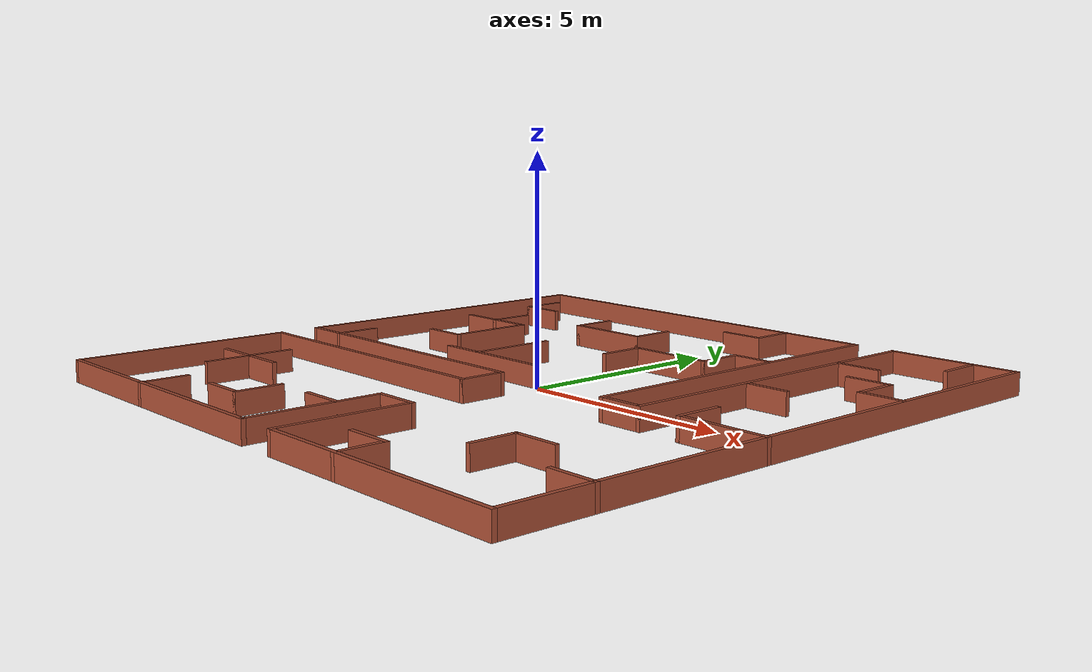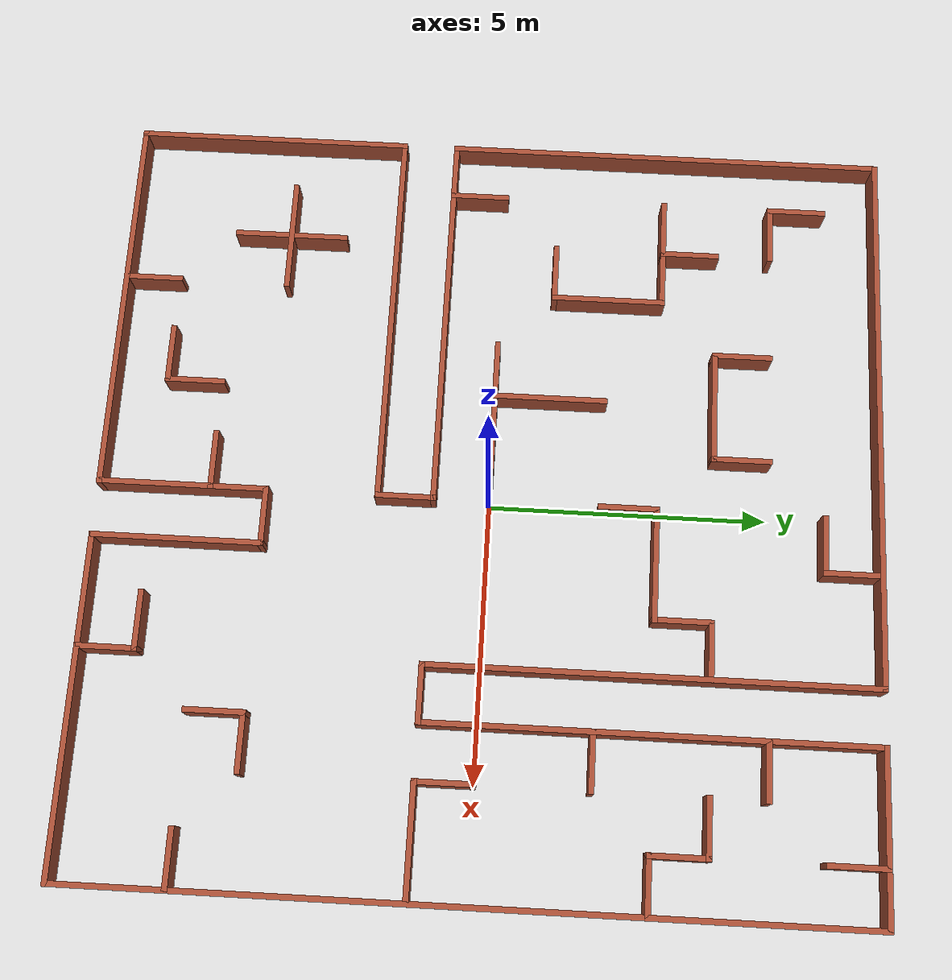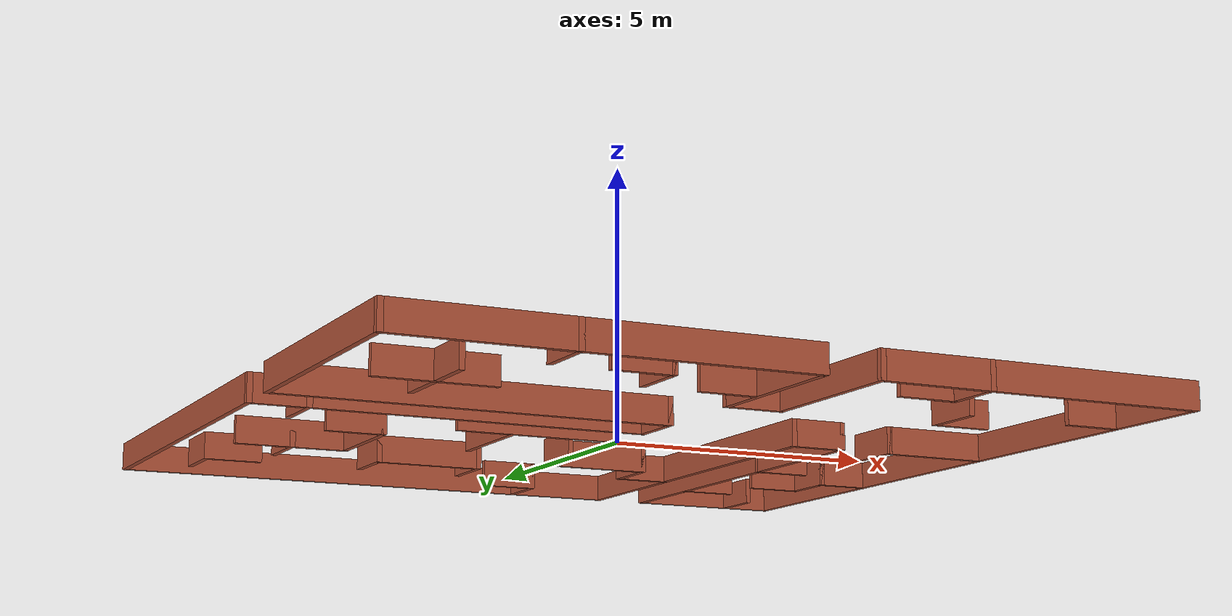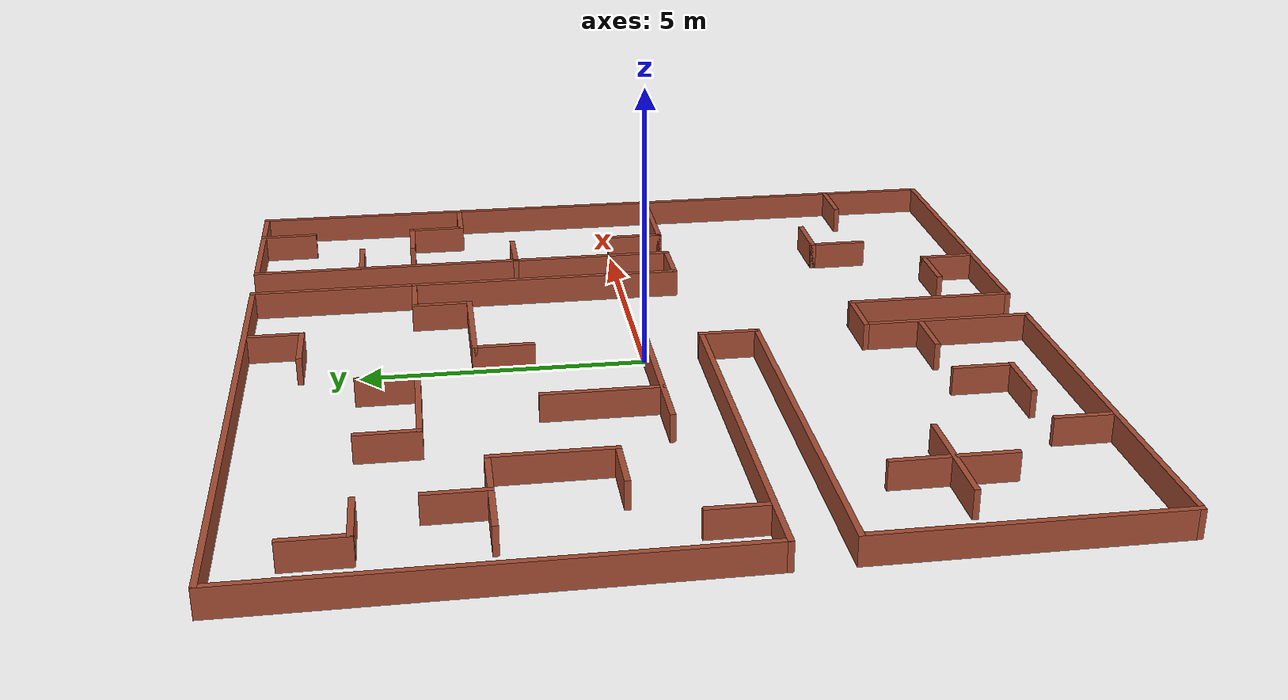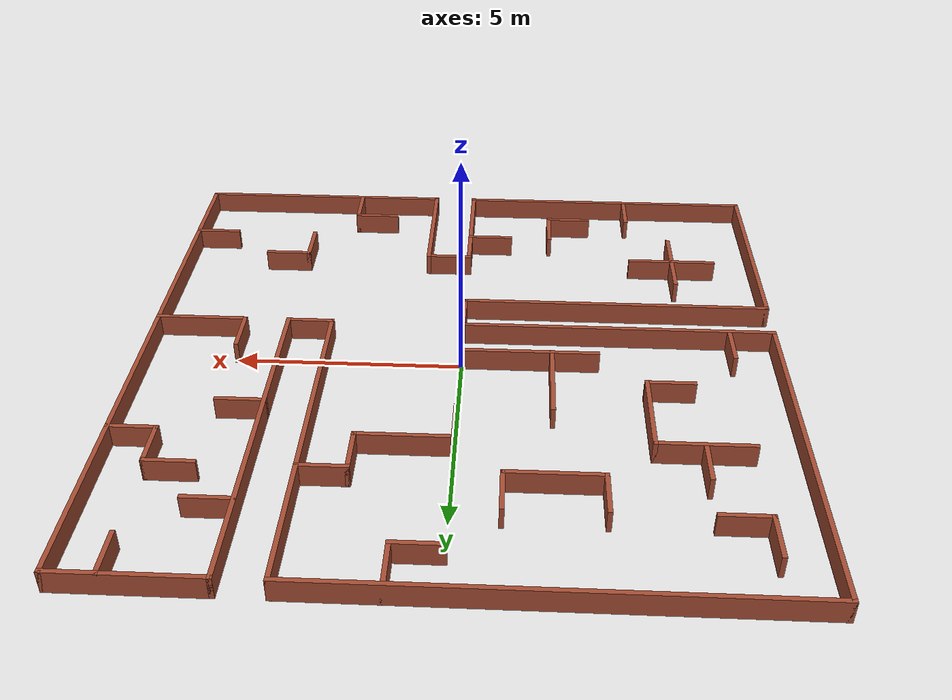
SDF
<?xml version='1.0'?>
<sdf version='1.7'>
  <model name='sin_cpx_0'>
    <pose>0 0 0 0 -0 0</pose>
    <link name='Wall_0'>
      <collision name='Wall_0_Collision'>
        <geometry>
          <box>
            <size>10.1 0.1 0.5</size>
          </box>
        </geometry>
        <pose>0 0 0.25 0 -0 0</pose>
      </collision>
      <visual name='Wall_0_Visual'>
        <pose>0 0 0.25 0 -0 0</pose>
        <geometry>
          <box>
            <size>10.1 0.1 0.5</size>
          </box>
        </geometry>
        <material>
          <script>
            <uri>file://media/materials/scripts/gazebo.material</uri>
            <name>Gazebo/Bricks</name>
          </script>
          <ambient>0.760784 0.662745 0.627451 1</ambient>
        </material>
        <meta>
          <layer>0</layer>
        </meta>
      </visual>
      <pose>-2 7 0 0 -0 0</pose>
    </link>
    <link name='Wall_1'>
      <collision name='Wall_1_Collision'>
        <geometry>
          <box>
            <size>8.1 0.1 0.5</size>
          </box>
        </geometry>
        <pose>0 0 0.25 0 -0 0</pose>
      </collision>
      <visual name='Wall_1_Visual'>
        <pose>0 0 0.25 0 -0 0</pose>
        <geometry>
          <box>
            <size>8.1 0.1 0.5</size>
          </box>
        </geometry>
        <material>
          <script>
            <uri>file://media/materials/scripts/gazebo.material</uri>
            <name>Gazebo/Bricks</name>
          </script>
          <ambient>0.760784 0.662745 0.627451 1</ambient>
        </material>
        <meta>
          <layer>0</layer>
        </meta>
      </visual>
      <pose>3 3 0 0 -0 -1.5708</pose>
    </link>
    <link name='Wall_10'>
      <collision name='Wall_10_Collision'>
        <geometry>
          <box>
            <size>7.1 0.1 0.5</size>
          </box>
        </geometry>
        <pose>0 0 0.25 0 -0 0</pose>
      </collision>
      <visual name='Wall_10_Visual'>
        <pose>0 0 0.25 0 -0 0</pose>
        <geometry>
          <box>
            <size>7.1 0.1 0.5</size>
          </box>
        </geometry>
        <material>
          <script>
            <uri>file://media/materials/scripts/gazebo.material</uri>
            <name>Gazebo/Bricks</name>
          </script>
          <ambient>0.760784 0.662745 0.627451 1</ambient>
        </material>
        <meta>
          <layer>0</layer>
        </meta>
      </visual>
      <pose>-3.5 -7 0 0 -0 3.14159</pose>
    </link>
    <link name='Wall_11'>
      <collision name='Wall_11_Collision'>
        <geometry>
          <box>
            <size>5.1 0.1 0.5</size>
          </box>
        </geometry>
        <pose>0 0 0.25 0 -0 0</pose>
      </collision>
      <visual name='Wall_11_Visual'>
        <pose>0 0 0.25 0 -0 0</pose>
        <geometry>
          <box>
            <size>5.1 0.1 0.5</size>
          </box>
        </geometry>
        <material>
          <script>
            <uri>file://media/materials/scripts/gazebo.material</uri>
            <name>Gazebo/Bricks</name>
          </script>
          <ambient>0.760784 0.662745 0.627451 1</ambient>
        </material>
        <meta>
          <layer>0</layer>
        </meta>
      </visual>
      <pose>-7 -4.5 0 0 -0 1.5708</pose>
    </link>
    <link name='Wall_12'>
      <collision name='Wall_12_Collision'>
        <geometry>
          <box>
            <size>7.1 0.1 0.5</size>
          </box>
        </geometry>
        <pose>0 0 0.25 0 -0 0</pose>
      </collision>
      <visual name='Wall_12_Visual'>
        <pose>0 0 0.25 0 -0 0</pose>
        <geometry>
          <box>
            <size>7.1 0.1 0.5</size>
          </box>
        </geometry>
        <material>
          <script>
            <uri>file://media/materials/scripts/gazebo.material</uri>
            <name>Gazebo/Bricks</name>
          </script>
          <ambient>0.760784 0.662745 0.627451 1</ambient>
        </material>
        <meta>
          <layer>0</layer>
        </meta>
      </visual>
      <pose>-3.5 -2 0 0 -0 0</pose>
    </link>
    <link name='Wall_13'>
      <collision name='Wall_13_Collision'>
        <geometry>
          <box>
            <size>1.1 0.1 0.5</size>
          </box>
        </geometry>
        <pose>0 0 0.25 0 -0 0</pose>
      </collision>
      <visual name='Wall_13_Visual'>
        <pose>0 0 0.25 0 -0 0</pose>
        <geometry>
          <box>
            <size>1.1 0.1 0.5</size>
          </box>
        </geometry>
        <material>
          <script>
            <uri>file://media/materials/scripts/gazebo.material</uri>
            <name>Gazebo/Bricks</name>
          </script>
          <ambient>0.760784 0.662745 0.627451 1</ambient>
        </material>
        <meta>
          <layer>0</layer>
        </meta>
      </visual>
      <pose>0 -1.5 0 0 -0 1.5708</pose>
    </link>
    <link name='Wall_14'>
      <collision name='Wall_14_Collision'>
        <geometry>
          <box>
            <size>7.1 0.1 0.5</size>
          </box>
        </geometry>
        <pose>0 0 0.25 0 -0 0</pose>
      </collision>
      <visual name='Wall_14_Visual'>
        <pose>0 0 0.25 0 -0 0</pose>
        <geometry>
          <box>
            <size>7.1 0.1 0.5</size>
          </box>
        </geometry>
        <material>
          <script>
            <uri>file://media/materials/scripts/gazebo.material</uri>
            <name>Gazebo/Bricks</name>
          </script>
          <ambient>0.760784 0.662745 0.627451 1</ambient>
        </material>
        <meta>
          <layer>0</layer>
        </meta>
      </visual>
      <pose>-3.5 -1 0 0 -0 3.14159</pose>
    </link>
    <link name='Wall_15'>
      <collision name='Wall_15_Collision'>
        <geometry>
          <box>
            <size>8.1 0.1 0.5</size>
          </box>
        </geometry>
        <pose>0 0 0.25 0 -0 0</pose>
      </collision>
      <visual name='Wall_15_Visual'>
        <pose>0 0 0.25 0 -0 0</pose>
        <geometry>
          <box>
            <size>8.1 0.1 0.5</size>
          </box>
        </geometry>
        <material>
          <script>
            <uri>file://media/materials/scripts/gazebo.material</uri>
            <name>Gazebo/Bricks</name>
          </script>
          <ambient>0.760784 0.662745 0.627451 1</ambient>
        </material>
        <meta>
          <layer>0</layer>
        </meta>
      </visual>
      <pose>-7 3 0 0 -0 1.5708</pose>
    </link>
    <link name='Wall_17'>
      <collision name='Wall_17_Collision'>
        <geometry>
          <box>
            <size>1.1 0.1 0.5</size>
          </box>
        </geometry>
        <pose>0 0 0.25 0 -0 0</pose>
      </collision>
      <visual name='Wall_17_Visual'>
        <pose>0 0 0.25 0 -0 0</pose>
        <geometry>
          <box>
            <size>1.1 0.1 0.5</size>
          </box>
        </geometry>
        <material>
          <script>
            <uri>file://media/materials/scripts/gazebo.material</uri>
            <name>Gazebo/Bricks</name>
          </script>
          <ambient>0.760784 0.662745 0.627451 1</ambient>
        </material>
        <meta>
          <layer>0</layer>
        </meta>
      </visual>
      <pose>-4 -6.5 0 0 -0 1.5708</pose>
    </link>
    <link name='Wall_19'>
      <collision name='Wall_19_Collision'>
        <geometry>
          <box>
            <size>2.1 0.1 0.5</size>
          </box>
        </geometry>
        <pose>0 0 0.25 0 -0 0</pose>
      </collision>
      <visual name='Wall_19_Visual'>
        <pose>0 0 0.25 0 -0 0</pose>
        <geometry>
          <box>
            <size>2.1 0.1 0.5</size>
          </box>
        </geometry>
        <material>
          <script>
            <uri>file://media/materials/scripts/gazebo.material</uri>
            <name>Gazebo/Bricks</name>
          </script>
          <ambient>0.760784 0.662745 0.627451 1</ambient>
        </material>
        <meta>
          <layer>0</layer>
        </meta>
      </visual>
      <pose>-5 -4 0 0 -0 0</pose>
    </link>
    <link name='Wall_2'>
      <collision name='Wall_2_Collision'>
        <geometry>
          <box>
            <size>1.1 0.1 0.5</size>
          </box>
        </geometry>
        <pose>0 0 0.25 0 -0 0</pose>
      </collision>
      <visual name='Wall_2_Visual'>
        <pose>0 0 0.25 0 -0 0</pose>
        <geometry>
          <box>
            <size>1.1 0.1 0.5</size>
          </box>
        </geometry>
        <material>
          <script>
            <uri>file://media/materials/scripts/gazebo.material</uri>
            <name>Gazebo/Bricks</name>
          </script>
          <ambient>0.760784 0.662745 0.627451 1</ambient>
        </material>
        <meta>
          <layer>0</layer>
        </meta>
      </visual>
      <pose>3.5 -1 0 0 -0 0</pose>
    </link>
    <link name='Wall_21'>
      <collision name='Wall_21_Collision'>
        <geometry>
          <box>
            <size>2.1 0.1 0.5</size>
          </box>
        </geometry>
        <pose>0 0 0.25 0 -0 0</pose>
      </collision>
      <visual name='Wall_21_Visual'>
        <pose>0 0 0.25 0 -0 0</pose>
        <geometry>
          <box>
            <size>2.1 0.1 0.5</size>
          </box>
        </geometry>
        <material>
          <script>
            <uri>file://media/materials/scripts/gazebo.material</uri>
            <name>Gazebo/Bricks</name>
          </script>
          <ambient>0.760784 0.662745 0.627451 1</ambient>
        </material>
        <meta>
          <layer>0</layer>
        </meta>
      </visual>
      <pose>-5 -4 0 0 -0 -1.5708</pose>
    </link>
    <link name='Wall_23'>
      <collision name='Wall_23_Collision'>
        <geometry>
          <box>
            <size>1.1 0.1 0.5</size>
          </box>
        </geometry>
        <pose>0 0 0.25 0 -0 0</pose>
      </collision>
      <visual name='Wall_23_Visual'>
        <pose>0 0 0.25 0 -0 0</pose>
        <geometry>
          <box>
            <size>1.1 0.1 0.5</size>
          </box>
        </geometry>
        <material>
          <script>
            <uri>file://media/materials/scripts/gazebo.material</uri>
            <name>Gazebo/Bricks</name>
          </script>
          <ambient>0.760784 0.662745 0.627451 1</ambient>
        </material>
        <meta>
          <layer>0</layer>
        </meta>
      </visual>
      <pose>-2.5 -6 0 0 -0 0</pose>
    </link>
    <link name='Wall_24'>
      <collision name='Wall_24_Collision'>
        <geometry>
          <box>
            <size>1.1 0.1 0.5</size>
          </box>
        </geometry>
        <pose>0 0 0.25 0 -0 0</pose>
      </collision>
      <visual name='Wall_24_Visual'>
        <pose>0 0 0.25 0 -0 0</pose>
        <geometry>
          <box>
            <size>1.1 0.1 0.5</size>
          </box>
        </geometry>
        <material>
          <script>
            <uri>file://media/materials/scripts/gazebo.material</uri>
            <name>Gazebo/Bricks</name>
          </script>
          <ambient>0.760784 0.662745 0.627451 1</ambient>
        </material>
        <meta>
          <layer>0</layer>
        </meta>
      </visual>
      <pose>-2 -5.5 0 0 -0 1.5708</pose>
    </link>
    <link name='Wall_26'>
      <collision name='Wall_26_Collision'>
        <geometry>
          <box>
            <size>1.1 0.1 0.5</size>
          </box>
        </geometry>
        <pose>0 0 0.25 0 -0 0</pose>
      </collision>
      <visual name='Wall_26_Visual'>
        <pose>0 0 0.25 0 -0 0</pose>
        <geometry>
          <box>
            <size>1.1 0.1 0.5</size>
          </box>
        </geometry>
        <material>
          <script>
            <uri>file://media/materials/scripts/gazebo.material</uri>
            <name>Gazebo/Bricks</name>
          </script>
          <ambient>0.760784 0.662745 0.627451 1</ambient>
        </material>
        <meta>
          <layer>0</layer>
        </meta>
      </visual>
      <pose>2.5 -6 0 0 -0 0</pose>
    </link>
    <link name='Wall_27'>
      <collision name='Wall_27_Collision'>
        <geometry>
          <box>
            <size>1.1 0.1 0.5</size>
          </box>
        </geometry>
        <pose>0 0 0.25 0 -0 0</pose>
      </collision>
      <visual name='Wall_27_Visual'>
        <pose>0 0 0.25 0 -0 0</pose>
        <geometry>
          <box>
            <size>1.1 0.1 0.5</size>
          </box>
        </geometry>
        <material>
          <script>
            <uri>file://media/materials/scripts/gazebo.material</uri>
            <name>Gazebo/Bricks</name>
          </script>
          <ambient>0.760784 0.662745 0.627451 1</ambient>
        </material>
        <meta>
          <layer>0</layer>
        </meta>
      </visual>
      <pose>3 -6.5 0 0 -0 -1.5708</pose>
    </link>
    <link name='Wall_3'>
      <collision name='Wall_3_Collision'>
        <geometry>
          <box>
            <size>8.1 0.1 0.5</size>
          </box>
        </geometry>
        <pose>0 0 0.25 0 -0 0</pose>
      </collision>
      <visual name='Wall_3_Visual'>
        <pose>0 0 0.25 0 -0 0</pose>
        <geometry>
          <box>
            <size>8.1 0.1 0.5</size>
          </box>
        </geometry>
        <material>
          <script>
            <uri>file://media/materials/scripts/gazebo.material</uri>
            <name>Gazebo/Bricks</name>
          </script>
          <ambient>0.760784 0.662745 0.627451 1</ambient>
        </material>
        <meta>
          <layer>0</layer>
        </meta>
      </visual>
      <pose>4 3 0 0 -0 1.5708</pose>
    </link>
    <link name='Wall_30'>
      <collision name='Wall_30_Collision'>
        <geometry>
          <box>
            <size>1.1 0.1 0.5</size>
          </box>
        </geometry>
        <pose>0 0 0.25 0 -0 0</pose>
      </collision>
      <visual name='Wall_30_Visual'>
        <pose>0 0 0.25 0 -0 0</pose>
        <geometry>
          <box>
            <size>1.1 0.1 0.5</size>
          </box>
        </geometry>
        <material>
          <script>
            <uri>file://media/materials/scripts/gazebo.material</uri>
            <name>Gazebo/Bricks</name>
          </script>
          <ambient>0.760784 0.662745 0.627451 1</ambient>
        </material>
        <meta>
          <layer>0</layer>
        </meta>
      </visual>
      <pose>4 -4.5 0 0 -0 1.5708</pose>
    </link>
    <link name='Wall_31'>
      <collision name='Wall_31_Collision'>
        <geometry>
          <box>
            <size>1.1 0.1 0.5</size>
          </box>
        </geometry>
        <pose>0 0 0.25 0 -0 0</pose>
      </collision>
      <visual name='Wall_31_Visual'>
        <pose>0 0 0.25 0 -0 0</pose>
        <geometry>
          <box>
            <size>1.1 0.1 0.5</size>
          </box>
        </geometry>
        <material>
          <script>
            <uri>file://media/materials/scripts/gazebo.material</uri>
            <name>Gazebo/Bricks</name>
          </script>
          <ambient>0.760784 0.662745 0.627451 1</ambient>
        </material>
        <meta>
          <layer>0</layer>
        </meta>
      </visual>
      <pose>4.5 -4 0 0 -0 0</pose>
    </link>
    <link name='Wall_33'>
      <collision name='Wall_33_Collision'>
        <geometry>
          <box>
            <size>1.1 0.1 0.5</size>
          </box>
        </geometry>
        <pose>0 0 0.25 0 -0 0</pose>
      </collision>
      <visual name='Wall_33_Visual'>
        <pose>0 0 0.25 0 -0 0</pose>
        <geometry>
          <box>
            <size>1.1 0.1 0.5</size>
          </box>
        </geometry>
        <material>
          <script>
            <uri>file://media/materials/scripts/gazebo.material</uri>
            <name>Gazebo/Bricks</name>
          </script>
          <ambient>0.760784 0.662745 0.627451 1</ambient>
        </material>
        <meta>
          <layer>0</layer>
        </meta>
      </visual>
      <pose>6.5 -5 0 0 -0 0</pose>
    </link>
    <link name='Wall_35'>
      <collision name='Wall_35_Collision'>
        <geometry>
          <box>
            <size>1.1 0.1 0.5</size>
          </box>
        </geometry>
        <pose>0 0 0.25 0 -0 0</pose>
      </collision>
      <visual name='Wall_35_Visual'>
        <pose>0 0 0.25 0 -0 0</pose>
        <geometry>
          <box>
            <size>1.1 0.1 0.5</size>
          </box>
        </geometry>
        <material>
          <script>
            <uri>file://media/materials/scripts/gazebo.material</uri>
            <name>Gazebo/Bricks</name>
          </script>
          <ambient>0.760784 0.662745 0.627451 1</ambient>
        </material>
        <meta>
          <layer>0</layer>
        </meta>
      </visual>
      <pose>5 -0.5 0 0 -0 -1.5708</pose>
    </link>
    <link name='Wall_36'>
      <collision name='Wall_36_Collision'>
        <geometry>
          <box>
            <size>2.1 0.1 0.5</size>
          </box>
        </geometry>
        <pose>0 0 0.25 0 -0 0</pose>
      </collision>
      <visual name='Wall_36_Visual'>
        <pose>0 0 0.25 0 -0 0</pose>
        <geometry>
          <box>
            <size>2.1 0.1 0.5</size>
          </box>
        </geometry>
        <material>
          <script>
            <uri>file://media/materials/scripts/gazebo.material</uri>
            <name>Gazebo/Bricks</name>
          </script>
          <ambient>0.760784 0.662745 0.627451 1</ambient>
        </material>
        <meta>
          <layer>0</layer>
        </meta>
      </visual>
      <pose>6 -1 0 0 -0 0</pose>
    </link>
    <link name='Wall_38'>
      <collision name='Wall_38_Collision'>
        <geometry>
          <box>
            <size>1.1 0.1 0.5</size>
          </box>
        </geometry>
        <pose>0 0 0.25 0 -0 0</pose>
      </collision>
      <visual name='Wall_38_Visual'>
        <pose>0 0 0.25 0 -0 0</pose>
        <geometry>
          <box>
            <size>1.1 0.1 0.5</size>
          </box>
        </geometry>
        <material>
          <script>
            <uri>file://media/materials/scripts/gazebo.material</uri>
            <name>Gazebo/Bricks</name>
          </script>
          <ambient>0.760784 0.662745 0.627451 1</ambient>
        </material>
        <meta>
          <layer>0</layer>
        </meta>
      </visual>
      <pose>4.5 2 0 0 -0 0</pose>
    </link>
    <link name='Wall_4'>
      <collision name='Wall_4_Collision'>
        <geometry>
          <box>
            <size>3.1 0.1 0.5</size>
          </box>
        </geometry>
        <pose>0 0 0.25 0 -0 0</pose>
      </collision>
      <visual name='Wall_4_Visual'>
        <pose>0 0 0.25 0 -0 0</pose>
        <geometry>
          <box>
            <size>3.1 0.1 0.5</size>
          </box>
        </geometry>
        <material>
          <script>
            <uri>file://media/materials/scripts/gazebo.material</uri>
            <name>Gazebo/Bricks</name>
          </script>
          <ambient>0.760784 0.662745 0.627451 1</ambient>
        </material>
        <meta>
          <layer>0</layer>
        </meta>
      </visual>
      <pose>5.5 7 0 0 -0 0</pose>
    </link>
    <link name='Wall_40'>
      <collision name='Wall_40_Collision'>
        <geometry>
          <box>
            <size>1.1 0.1 0.5</size>
          </box>
        </geometry>
        <pose>0 0 0.25 0 -0 0</pose>
      </collision>
      <visual name='Wall_40_Visual'>
        <pose>0 0 0.25 0 -0 0</pose>
        <geometry>
          <box>
            <size>1.1 0.1 0.5</size>
          </box>
        </geometry>
        <material>
          <script>
            <uri>file://media/materials/scripts/gazebo.material</uri>
            <name>Gazebo/Bricks</name>
          </script>
          <ambient>0.760784 0.662745 0.627451 1</ambient>
        </material>
        <meta>
          <layer>0</layer>
        </meta>
      </visual>
      <pose>4.5 5 0 0 -0 0</pose>
    </link>
    <link name='Wall_42'>
      <collision name='Wall_42_Collision'>
        <geometry>
          <box>
            <size>1.1 0.1 0.5</size>
          </box>
        </geometry>
        <pose>0 0 0.25 0 -0 0</pose>
      </collision>
      <visual name='Wall_42_Visual'>
        <pose>0 0 0.25 0 -0 0</pose>
        <geometry>
          <box>
            <size>1.1 0.1 0.5</size>
          </box>
        </geometry>
        <material>
          <script>
            <uri>file://media/materials/scripts/gazebo.material</uri>
            <name>Gazebo/Bricks</name>
          </script>
          <ambient>0.760784 0.662745 0.627451 1</ambient>
        </material>
        <meta>
          <layer>0</layer>
        </meta>
      </visual>
      <pose>6 6.5 0 0 -0 -1.5708</pose>
    </link>
    <link name='Wall_44'>
      <collision name='Wall_44_Collision'>
        <geometry>
          <box>
            <size>1.1 0.1 0.5</size>
          </box>
        </geometry>
        <pose>0 0 0.25 0 -0 0</pose>
      </collision>
      <visual name='Wall_44_Visual'>
        <pose>0 0 0.25 0 -0 0</pose>
        <geometry>
          <box>
            <size>1.1 0.1 0.5</size>
          </box>
        </geometry>
        <material>
          <script>
            <uri>file://media/materials/scripts/gazebo.material</uri>
            <name>Gazebo/Bricks</name>
          </script>
          <ambient>0.760784 0.662745 0.627451 1</ambient>
        </material>
        <meta>
          <layer>0</layer>
        </meta>
      </visual>
      <pose>5.5 4 0 0 -0 0</pose>
    </link>
    <link name='Wall_45'>
      <collision name='Wall_45_Collision'>
        <geometry>
          <box>
            <size>1.1 0.1 0.5</size>
          </box>
        </geometry>
        <pose>0 0 0.25 0 -0 0</pose>
      </collision>
      <visual name='Wall_45_Visual'>
        <pose>0 0 0.25 0 -0 0</pose>
        <geometry>
          <box>
            <size>1.1 0.1 0.5</size>
          </box>
        </geometry>
        <material>
          <script>
            <uri>file://media/materials/scripts/gazebo.material</uri>
            <name>Gazebo/Bricks</name>
          </script>
          <ambient>0.760784 0.662745 0.627451 1</ambient>
        </material>
        <meta>
          <layer>0</layer>
        </meta>
      </visual>
      <pose>6 3.5 0 0 -0 -1.5708</pose>
    </link>
    <link name='Wall_46'>
      <collision name='Wall_46_Collision'>
        <geometry>
          <box>
            <size>1.1 0.1 0.5</size>
          </box>
        </geometry>
        <pose>0 0 0.25 0 -0 0</pose>
      </collision>
      <visual name='Wall_46_Visual'>
        <pose>0 0 0.25 0 -0 0</pose>
        <geometry>
          <box>
            <size>1.1 0.1 0.5</size>
          </box>
        </geometry>
        <material>
          <script>
            <uri>file://media/materials/scripts/gazebo.material</uri>
            <name>Gazebo/Bricks</name>
          </script>
          <ambient>0.760784 0.662745 0.627451 1</ambient>
        </material>
        <meta>
          <layer>0</layer>
        </meta>
      </visual>
      <pose>6.5 3 0 0 -0 0</pose>
    </link>
    <link name='Wall_48'>
      <collision name='Wall_48_Collision'>
        <geometry>
          <box>
            <size>1.1 0.1 0.5</size>
          </box>
        </geometry>
        <pose>0 0 0.25 0 -0 0</pose>
      </collision>
      <visual name='Wall_48_Visual'>
        <pose>0 0 0.25 0 -0 0</pose>
        <geometry>
          <box>
            <size>1.1 0.1 0.5</size>
          </box>
        </geometry>
        <material>
          <script>
            <uri>file://media/materials/scripts/gazebo.material</uri>
            <name>Gazebo/Bricks</name>
          </script>
          <ambient>0.760784 0.662745 0.627451 1</ambient>
        </material>
        <meta>
          <layer>0</layer>
        </meta>
      </visual>
      <pose>0 2.5 0 0 -0 1.5708</pose>
    </link>
    <link name='Wall_49'>
      <collision name='Wall_49_Collision'>
        <geometry>
          <box>
            <size>2.1 0.1 0.5</size>
          </box>
        </geometry>
        <pose>0 0 0.25 0 -0 0</pose>
      </collision>
      <visual name='Wall_49_Visual'>
        <pose>0 0 0.25 0 -0 0</pose>
        <geometry>
          <box>
            <size>2.1 0.1 0.5</size>
          </box>
        </geometry>
        <material>
          <script>
            <uri>file://media/materials/scripts/gazebo.material</uri>
            <name>Gazebo/Bricks</name>
          </script>
          <ambient>0.760784 0.662745 0.627451 1</ambient>
        </material>
        <meta>
          <layer>0</layer>
        </meta>
      </visual>
      <pose>1 3 0 0 -0 0</pose>
    </link>
    <link name='Wall_5'>
      <collision name='Wall_5_Collision'>
        <geometry>
          <box>
            <size>14.1 0.1 0.5</size>
          </box>
        </geometry>
        <pose>0 0 0.25 0 -0 0</pose>
      </collision>
      <visual name='Wall_5_Visual'>
        <pose>0 0 0.25 0 -0 0</pose>
        <geometry>
          <box>
            <size>14.1 0.1 0.5</size>
          </box>
        </geometry>
        <material>
          <script>
            <uri>file://media/materials/scripts/gazebo.material</uri>
            <name>Gazebo/Bricks</name>
          </script>
          <ambient>0.760784 0.662745 0.627451 1</ambient>
        </material>
        <meta>
          <layer>0</layer>
        </meta>
      </visual>
      <pose>7 0 0 0 -0 -1.5708</pose>
    </link>
    <link name='Wall_50'>
      <collision name='Wall_50_Collision'>
        <geometry>
          <box>
            <size>1.1 0.1 0.5</size>
          </box>
        </geometry>
        <pose>0 0 0.25 0 -0 0</pose>
      </collision>
      <visual name='Wall_50_Visual'>
        <pose>0 0 0.25 0 -0 0</pose>
        <geometry>
          <box>
            <size>1.1 0.1 0.5</size>
          </box>
        </geometry>
        <material>
          <script>
            <uri>file://media/materials/scripts/gazebo.material</uri>
            <name>Gazebo/Bricks</name>
          </script>
          <ambient>0.760784 0.662745 0.627451 1</ambient>
        </material>
        <meta>
          <layer>0</layer>
        </meta>
      </visual>
      <pose>2 3.5 0 0 -0 1.5708</pose>
    </link>
    <link name='Wall_51'>
      <collision name='Wall_51_Collision'>
        <geometry>
          <box>
            <size>1.1 0.1 0.5</size>
          </box>
        </geometry>
        <pose>0 0 0.25 0 -0 0</pose>
      </collision>
      <visual name='Wall_51_Visual'>
        <pose>0 0 0.25 0 -0 0</pose>
        <geometry>
          <box>
            <size>1.1 0.1 0.5</size>
          </box>
        </geometry>
        <material>
          <script>
            <uri>file://media/materials/scripts/gazebo.material</uri>
            <name>Gazebo/Bricks</name>
          </script>
          <ambient>0.760784 0.662745 0.627451 1</ambient>
        </material>
        <meta>
          <layer>0</layer>
        </meta>
      </visual>
      <pose>2.5 4 0 0 -0 0</pose>
    </link>
    <link name='Wall_53'>
      <collision name='Wall_53_Collision'>
        <geometry>
          <box>
            <size>1.1 0.1 0.5</size>
          </box>
        </geometry>
        <pose>0 0 0.25 0 -0 0</pose>
      </collision>
      <visual name='Wall_53_Visual'>
        <pose>0 0 0.25 0 -0 0</pose>
        <geometry>
          <box>
            <size>1.1 0.1 0.5</size>
          </box>
        </geometry>
        <material>
          <script>
            <uri>file://media/materials/scripts/gazebo.material</uri>
            <name>Gazebo/Bricks</name>
          </script>
          <ambient>0.760784 0.662745 0.627451 1</ambient>
        </material>
        <meta>
          <layer>0</layer>
        </meta>
      </visual>
      <pose>-6 -0.5 0 0 -0 -1.5708</pose>
    </link>
    <link name='Wall_6'>
      <collision name='Wall_6_Collision'>
        <geometry>
          <box>
            <size>6.1 0.1 0.5</size>
          </box>
        </geometry>
        <pose>0 0 0.25 0 -0 0</pose>
      </collision>
      <visual name='Wall_6_Visual'>
        <pose>0 0 0.25 0 -0 0</pose>
        <geometry>
          <box>
            <size>6.1 0.1 0.5</size>
          </box>
        </geometry>
        <material>
          <script>
            <uri>file://media/materials/scripts/gazebo.material</uri>
            <name>Gazebo/Bricks</name>
          </script>
          <ambient>0.760784 0.662745 0.627451 1</ambient>
        </material>
        <meta>
          <layer>0</layer>
        </meta>
      </visual>
      <pose>4 -7 0 0 -0 3.14159</pose>
    </link>
    <link name='Wall_62'>
      <collision name='Wall_62_Collision'>
        <geometry>
          <box>
            <size>1.1 0.1 0.5</size>
          </box>
        </geometry>
        <pose>0 0 0.25 0 -0 0</pose>
      </collision>
      <visual name='Wall_62_Visual'>
        <pose>0 0 0.25 0 -0 0</pose>
        <geometry>
          <box>
            <size>1.1 0.1 0.5</size>
          </box>
        </geometry>
        <material>
          <script>
            <uri>file://media/materials/scripts/gazebo.material</uri>
            <name>Gazebo/Bricks</name>
          </script>
          <ambient>0.760784 0.662745 0.627451 1</ambient>
        </material>
        <meta>
          <layer>0</layer>
        </meta>
      </visual>
      <pose>1 6.5 0 0 -0 1.5708</pose>
    </link>
    <link name='Wall_64'>
      <collision name='Wall_64_Collision'>
        <geometry>
          <box>
            <size>1.1 0.1 0.5</size>
          </box>
        </geometry>
        <pose>0 0 0.25 0 -0 0</pose>
      </collision>
      <visual name='Wall_64_Visual'>
        <pose>0 0 0.25 0 -0 0</pose>
        <geometry>
          <box>
            <size>1.1 0.1 0.5</size>
          </box>
        </geometry>
        <material>
          <script>
            <uri>file://media/materials/scripts/gazebo.material</uri>
            <name>Gazebo/Bricks</name>
          </script>
          <ambient>0.760784 0.662745 0.627451 1</ambient>
        </material>
        <meta>
          <layer>0</layer>
        </meta>
      </visual>
      <pose>-3 4.5 0 0 -0 -1.5708</pose>
    </link>
    <link name='Wall_65'>
      <collision name='Wall_65_Collision'>
        <geometry>
          <box>
            <size>2.1 0.1 0.5</size>
          </box>
        </geometry>
        <pose>0 0 0.25 0 -0 0</pose>
      </collision>
      <visual name='Wall_65_Visual'>
        <pose>0 0 0.25 0 -0 0</pose>
        <geometry>
          <box>
            <size>2.1 0.1 0.5</size>
          </box>
        </geometry>
        <material>
          <script>
            <uri>file://media/materials/scripts/gazebo.material</uri>
            <name>Gazebo/Bricks</name>
          </script>
          <ambient>0.760784 0.662745 0.627451 1</ambient>
        </material>
        <meta>
          <layer>0</layer>
        </meta>
      </visual>
      <pose>-2 4 0 0 -0 0</pose>
    </link>
    <link name='Wall_66'>
      <collision name='Wall_66_Collision'>
        <geometry>
          <box>
            <size>1.1 0.1 0.5</size>
          </box>
        </geometry>
        <pose>0 0 0.25 0 -0 0</pose>
      </collision>
      <visual name='Wall_66_Visual'>
        <pose>0 0 0.25 0 -0 0</pose>
        <geometry>
          <box>
            <size>1.1 0.1 0.5</size>
          </box>
        </geometry>
        <material>
          <script>
            <uri>file://media/materials/scripts/gazebo.material</uri>
            <name>Gazebo/Bricks</name>
          </script>
          <ambient>0.760784 0.662745 0.627451 1</ambient>
        </material>
        <meta>
          <layer>0</layer>
        </meta>
      </visual>
      <pose>-1 4.5 0 0 -0 1.5708</pose>
    </link>
    <link name='Wall_68'>
      <collision name='Wall_68_Collision'>
        <geometry>
          <box>
            <size>1.1 0.1 0.5</size>
          </box>
        </geometry>
        <pose>0 0 0.25 0 -0 0</pose>
      </collision>
      <visual name='Wall_68_Visual'>
        <pose>0 0 0.25 0 -0 0</pose>
        <geometry>
          <box>
            <size>1.1 0.1 0.5</size>
          </box>
        </geometry>
        <material>
          <script>
            <uri>file://media/materials/scripts/gazebo.material</uri>
            <name>Gazebo/Bricks</name>
          </script>
          <ambient>0.760784 0.662745 0.627451 1</ambient>
        </material>
        <meta>
          <layer>0</layer>
        </meta>
      </visual>
      <pose>-5 3.5 0 0 -0 -1.5708</pose>
    </link>
    <link name='Wall_7'>
      <collision name='Wall_7_Collision'>
        <geometry>
          <box>
            <size>3.1 0.1 0.5</size>
          </box>
        </geometry>
        <pose>0 0 0.25 0 -0 0</pose>
      </collision>
      <visual name='Wall_7_Visual'>
        <pose>0 0 0.25 0 -0 0</pose>
        <geometry>
          <box>
            <size>3.1 0.1 0.5</size>
          </box>
        </geometry>
        <material>
          <script>
            <uri>file://media/materials/scripts/gazebo.material</uri>
            <name>Gazebo/Bricks</name>
          </script>
          <ambient>0.760784 0.662745 0.627451 1</ambient>
        </material>
        <meta>
          <layer>0</layer>
        </meta>
      </visual>
      <pose>1 -5.5 0 0 -0 1.5708</pose>
    </link>
    <link name='Wall_70'>
      <collision name='Wall_70_Collision'>
        <geometry>
          <box>
            <size>2.1 0.1 0.5</size>
          </box>
        </geometry>
        <pose>0 0 0.25 0 -0 0</pose>
      </collision>
      <visual name='Wall_70_Visual'>
        <pose>0 0 0.25 0 -0 0</pose>
        <geometry>
          <box>
            <size>2.1 0.1 0.5</size>
          </box>
        </geometry>
        <material>
          <script>
            <uri>file://media/materials/scripts/gazebo.material</uri>
            <name>Gazebo/Bricks</name>
          </script>
          <ambient>0.760784 0.662745 0.627451 1</ambient>
        </material>
        <meta>
          <layer>0</layer>
        </meta>
      </visual>
      <pose>-5 3 0 0 -0 0</pose>
    </link>
    <link name='Wall_71'>
      <collision name='Wall_71_Collision'>
        <geometry>
          <box>
            <size>2.1 0.1 0.5</size>
          </box>
        </geometry>
        <pose>0 0 0.25 0 -0 0</pose>
      </collision>
      <visual name='Wall_71_Visual'>
        <pose>0 0 0.25 0 -0 0</pose>
        <geometry>
          <box>
            <size>2.1 0.1 0.5</size>
          </box>
        </geometry>
        <material>
          <script>
            <uri>file://media/materials/scripts/gazebo.material</uri>
            <name>Gazebo/Bricks</name>
          </script>
          <ambient>0.760784 0.662745 0.627451 1</ambient>
        </material>
        <meta>
          <layer>0</layer>
        </meta>
      </visual>
      <pose>-4 2 0 0 -0 -1.5708</pose>
    </link>
    <link name='Wall_72'>
      <collision name='Wall_72_Collision'>
        <geometry>
          <box>
            <size>1.1 0.1 0.5</size>
          </box>
        </geometry>
        <pose>0 0 0.25 0 -0 0</pose>
      </collision>
      <visual name='Wall_72_Visual'>
        <pose>0 0 0.25 0 -0 0</pose>
        <geometry>
          <box>
            <size>1.1 0.1 0.5</size>
          </box>
        </geometry>
        <material>
          <script>
            <uri>file://media/materials/scripts/gazebo.material</uri>
            <name>Gazebo/Bricks</name>
          </script>
          <ambient>0.760784 0.662745 0.627451 1</ambient>
        </material>
        <meta>
          <layer>0</layer>
        </meta>
      </visual>
      <pose>-4.5 1 0 0 -0 3.14159</pose>
    </link>
    <link name='Wall_75'>
      <collision name='Wall_75_Collision'>
        <geometry>
          <box>
            <size>2.1 0.1 0.5</size>
          </box>
        </geometry>
        <pose>0 0 0.25 0 -0 0</pose>
      </collision>
      <visual name='Wall_75_Visual'>
        <pose>0 0 0.25 0 -0 0</pose>
        <geometry>
          <box>
            <size>2.1 0.1 0.5</size>
          </box>
        </geometry>
        <material>
          <script>
            <uri>file://media/materials/scripts/gazebo.material</uri>
            <name>Gazebo/Bricks</name>
          </script>
          <ambient>0.760784 0.662745 0.627451 1</ambient>
        </material>
        <meta>
          <layer>0</layer>
        </meta>
      </visual>
      <pose>-2 1 0 0 -0 1.5708</pose>
    </link>
    <link name='Wall_8'>
      <collision name='Wall_8_Collision'>
        <geometry>
          <box>
            <size>1.1 0.1 0.5</size>
          </box>
        </geometry>
        <pose>0 0 0.25 0 -0 0</pose>
      </collision>
      <visual name='Wall_8_Visual'>
        <pose>0 0 0.25 0 -0 0</pose>
        <geometry>
          <box>
            <size>1.1 0.1 0.5</size>
          </box>
        </geometry>
        <material>
          <script>
            <uri>file://media/materials/scripts/gazebo.material</uri>
            <name>Gazebo/Bricks</name>
          </script>
          <ambient>0.760784 0.662745 0.627451 1</ambient>
        </material>
        <meta>
          <layer>0</layer>
        </meta>
      </visual>
      <pose>0.5 -4 0 0 -0 3.14159</pose>
    </link>
    <link name='Wall_80'>
      <collision name='Wall_80_Collision'>
        <geometry>
          <box>
            <size>1.1 0.1 0.5</size>
          </box>
        </geometry>
        <pose>0 0 0.25 0 -0 0</pose>
      </collision>
      <visual name='Wall_80_Visual'>
        <pose>0 0 0.25 0 -0 0</pose>
        <geometry>
          <box>
            <size>1.1 0.1 0.5</size>
          </box>
        </geometry>
        <material>
          <script>
            <uri>file://media/materials/scripts/gazebo.material</uri>
            <name>Gazebo/Bricks</name>
          </script>
          <ambient>0.760784 0.662745 0.627451 1</ambient>
        </material>
        <meta>
          <layer>0</layer>
        </meta>
      </visual>
      <pose>-0.5 -5 0 0 -0 0</pose>
    </link>
    <link name='Wall_84'>
      <collision name='Wall_84_Collision'>
        <geometry>
          <box>
            <size>1.1 0.1 0.5</size>
          </box>
        </geometry>
        <pose>0 0 0.25 0 -0 0</pose>
      </collision>
      <visual name='Wall_84_Visual'>
        <pose>0 0 0.25 0 -0 0</pose>
        <geometry>
          <box>
            <size>1.1 0.1 0.5</size>
          </box>
        </geometry>
        <material>
          <script>
            <uri>file://media/materials/scripts/gazebo.material</uri>
            <name>Gazebo/Bricks</name>
          </script>
          <ambient>0.760784 0.662745 0.627451 1</ambient>
        </material>
        <meta>
          <layer>0</layer>
        </meta>
      </visual>
      <pose>-6 5.5 0 0 -0 -1.5708</pose>
    </link>
    <link name='Wall_85'>
      <collision name='Wall_85_Collision'>
        <geometry>
          <box>
            <size>1.1 0.1 0.5</size>
          </box>
        </geometry>
        <pose>0 0 0.25 0 -0 0</pose>
      </collision>
      <visual name='Wall_85_Visual'>
        <pose>0 0 0.25 0 -0 0</pose>
        <geometry>
          <box>
            <size>1.1 0.1 0.5</size>
          </box>
        </geometry>
        <material>
          <script>
            <uri>file://media/materials/scripts/gazebo.material</uri>
            <name>Gazebo/Bricks</name>
          </script>
          <ambient>0.760784 0.662745 0.627451 1</ambient>
        </material>
        <meta>
          <layer>0</layer>
        </meta>
      </visual>
      <pose>-5.5 5 0 0 -0 0</pose>
    </link>
    <link name='Wall_88'>
      <collision name='Wall_88_Collision'>
        <geometry>
          <box>
            <size>1.1 0.1 0.5</size>
          </box>
        </geometry>
        <pose>0 0 0.25 0 -0 0</pose>
      </collision>
      <visual name='Wall_88_Visual'>
        <pose>0 0 0.25 0 -0 0</pose>
        <geometry>
          <box>
            <size>1.1 0.1 0.5</size>
          </box>
        </geometry>
        <material>
          <script>
            <uri>file://media/materials/scripts/gazebo.material</uri>
            <name>Gazebo/Bricks</name>
          </script>
          <ambient>0.760784 0.662745 0.627451 1</ambient>
        </material>
        <meta>
          <layer>0</layer>
        </meta>
      </visual>
      <pose>0.5 6 0 0 -0 3.14159</pose>
    </link>
    <link name='Wall_9'>
      <collision name='Wall_9_Collision'>
        <geometry>
          <box>
            <size>3.1 0.1 0.5</size>
          </box>
        </geometry>
        <pose>0 0 0.25 0 -0 0</pose>
      </collision>
      <visual name='Wall_9_Visual'>
        <pose>0 0 0.25 0 -0 0</pose>
        <geometry>
          <box>
            <size>3.1 0.1 0.5</size>
          </box>
        </geometry>
        <material>
          <script>
            <uri>file://media/materials/scripts/gazebo.material</uri>
            <name>Gazebo/Bricks</name>
          </script>
          <ambient>0.760784 0.662745 0.627451 1</ambient>
        </material>
        <meta>
          <layer>0</layer>
        </meta>
      </visual>
      <pose>0 -5.5 0 0 -0 -1.5708</pose>
    </link>
    <link name='Wall_91'>
      <collision name='Wall_91_Collision'>
        <geometry>
          <box>
            <size>3.1 0.1 0.5</size>
          </box>
        </geometry>
        <pose>0 0 0.25 0 -0 0</pose>
      </collision>
      <visual name='Wall_91_Visual'>
        <pose>0 0 0.25 0 -0 0</pose>
        <geometry>
          <box>
            <size>3.1 0.1 0.5</size>
          </box>
        </geometry>
        <material>
          <script>
            <uri>file://media/materials/scripts/gazebo.material</uri>
            <name>Gazebo/Bricks</name>
          </script>
          <ambient>0.760784 0.662745 0.627451 1</ambient>
        </material>
        <meta>
          <layer>0</layer>
        </meta>
      </visual>
      <pose>-1.5 0 0 0 -0 0</pose>
    </link>
    <static>1</static>
  </model>
</sdf>
